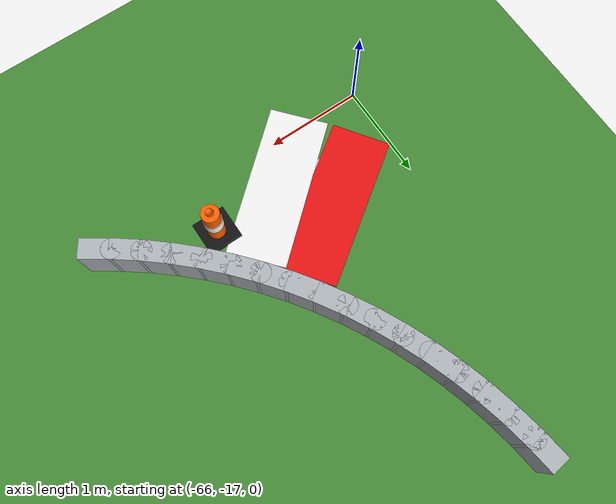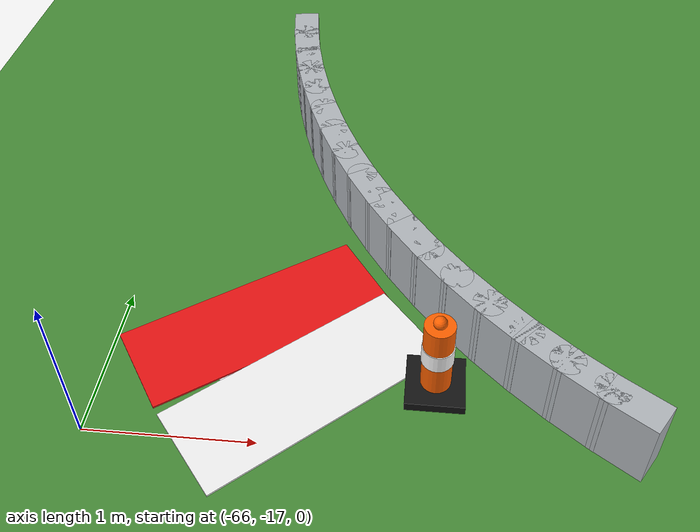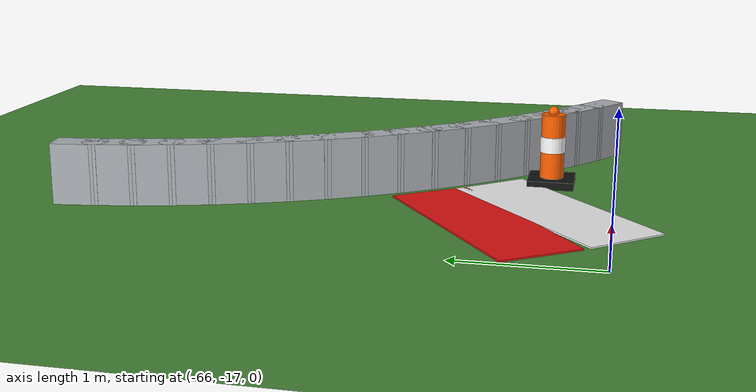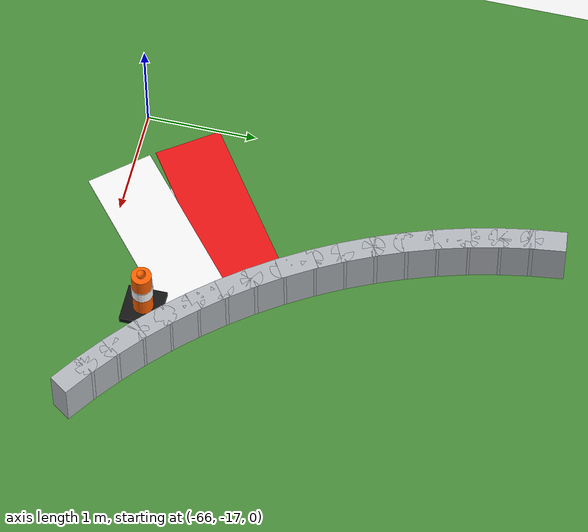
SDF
<sdf version="1.6">
 <world name="sem_silesia_ring_2026">
  <model name="ground_plane">
   <static>true</static>
   <link name="link">
    <collision name="collision">
     <geometry><plane><normal>0 0 1</normal><size>600 600</size></plane></geometry>
     <surface><friction><ode><mu>0.6</mu><mu2>0.6</mu2></ode></friction></surface>
    </collision>
    <visual name="visual">
     <geometry><plane><normal>0 0 1</normal><size>600 600</size></plane></geometry>
     <material><ambient>0.28 0.55 0.22 1</ambient><diffuse>0.28 0.55 0.22 1</diffuse></material>
    </visual>
   </link>
  </model>
  <model name="wl_Li_s42">
   <static>true</static>
   <pose>-65.2361 -16.5178 0.0050 0 0 5.3669</pose>
   <link name="link">
    <visual name="v">
     <geometry><box><size>0.4008 0.2000 0.0040</size></box></geometry>
     <material><ambient>1 1 1 1</ambient><diffuse>1 1 1 1</diffuse></material>
    </visual>
    <collision name="c">
     <geometry><box><size>0.4008 0.2000 0.0040</size></box></geometry>
     <surface><friction><ode><mu>0.9</mu><mu2>0.9</mu2></ode></friction></surface>
    </collision>
   </link>
  </model>
  <model name="wl_Li_jnt43">
   <static>true</static>
   <pose>-65.1292 -16.6535 0.0050 0 0 0</pose>
   <link name="link">
    <visual name="v">
     <geometry><cylinder><radius>0.1000</radius><length>0.0040</length></cylinder></geometry>
     <material><ambient>1 1 1 1</ambient><diffuse>1 1 1 1</diffuse></material>
    </visual>
    <collision name="c">
     <geometry><cylinder><radius>0.1000</radius><length>0.0040</length></cylinder></geometry>
     <surface><friction><ode><mu>0.9</mu><mu2>0.9</mu2></ode></friction></surface>
    </collision>
   </link>
  </model>
  <model name="wl_Li_s43">
   <static>true</static>
   <pose>-65.0187 -16.7864 0.0050 0 0 5.4192</pose>
   <link name="link">
    <visual name="v">
     <geometry><box><size>0.4008 0.2000 0.0040</size></box></geometry>
     <material><ambient>1 1 1 1</ambient><diffuse>1 1 1 1</diffuse></material>
    </visual>
    <collision name="c">
     <geometry><box><size>0.4008 0.2000 0.0040</size></box></geometry>
     <surface><friction><ode><mu>0.9</mu><mu2>0.9</mu2></ode></friction></surface>
    </collision>
   </link>
  </model>
  <model name="wl_Li_jnt44">
   <static>true</static>
   <pose>-64.9048 -16.9163 0.0050 0 0 0</pose>
   <link name="link">
    <visual name="v">
     <geometry><cylinder><radius>0.1000</radius><length>0.0040</length></cylinder></geometry>
     <material><ambient>1 1 1 1</ambient><diffuse>1 1 1 1</diffuse></material>
    </visual>
    <collision name="c">
     <geometry><cylinder><radius>0.1000</radius><length>0.0040</length></cylinder></geometry>
     <surface><friction><ode><mu>0.9</mu><mu2>0.9</mu2></ode></friction></surface>
    </collision>
   </link>
  </model>
  <model name="kL_in_k16">
   <static>true</static>
   <pose>-65.1543 -16.1225 0.0120 0 0 5.3250</pose>
   <link name="link">
    <visual name="v">
     <geometry><box><size>0.6135 1.6000 0.0120</size></box></geometry>
     <material><ambient>0.92 0.08 0.08 1</ambient><diffuse>0.92 0.08 0.08 1</diffuse></material>
    </visual>
    <collision name="c">
     <geometry><box><size>0.6135 1.6000 0.0120</size></box></geometry>
     <surface><friction><ode><mu>0.9</mu><mu2>0.9</mu2></ode></friction></surface>
    </collision>
   </link>
  </model>
  <model name="kL_in_k17">
   <static>true</static>
   <pose>-64.7906 -16.5915 0.0120 0 0 5.4192</pose>
   <link name="link">
    <visual name="v">
     <geometry><box><size>0.6135 1.6000 0.0120</size></box></geometry>
     <material><ambient>0.96 0.96 0.96 1</ambient><diffuse>0.96 0.96 0.96 1</diffuse></material>
    </visual>
    <collision name="c">
     <geometry><box><size>0.6135 1.6000 0.0120</size></box></geometry>
     <surface><friction><ode><mu>0.9</mu><mu2>0.9</mu2></ode></friction></surface>
    </collision>
   </link>
  </model>
  <model name="arm_Li_s32">
   <static>true</static>
   <pose>-65.2547 -13.1918 0.2250 0 0 4.8433</pose>
   <link name="link">
    <visual name="v">
     <geometry><box><size>0.3327 0.2000 0.4500</size></box></geometry>
     <material><ambient>0.70 0.72 0.74 1</ambient><diffuse>0.70 0.72 0.74 1</diffuse></material>
    </visual>
    <collision name="c">
     <geometry><box><size>0.3327 0.2000 0.4500</size></box></geometry>
     <surface><friction><ode><mu>0.9</mu><mu2>0.9</mu2></ode></friction></surface>
    </collision>
   </link>
  </model>
  <model name="arm_Li_jnt33">
   <static>true</static>
   <pose>-65.2347 -13.3291 0.2250 0 0 0</pose>
   <link name="link">
    <visual name="v">
     <geometry><cylinder><radius>0.1000</radius><length>0.4500</length></cylinder></geometry>
     <material><ambient>0.70 0.72 0.74 1</ambient><diffuse>0.70 0.72 0.74 1</diffuse></material>
    </visual>
    <collision name="c">
     <geometry><cylinder><radius>0.1000</radius><length>0.4500</length></cylinder></geometry>
     <surface><friction><ode><mu>0.9</mu><mu2>0.9</mu2></ode></friction></surface>
    </collision>
   </link>
  </model>
  <model name="arm_Li_s33">
   <static>true</static>
   <pose>-65.2113 -13.4658 0.2250 0 0 4.8956</pose>
   <link name="link">
    <visual name="v">
     <geometry><box><size>0.3327 0.2000 0.4500</size></box></geometry>
     <material><ambient>0.70 0.72 0.74 1</ambient><diffuse>0.70 0.72 0.74 1</diffuse></material>
    </visual>
    <collision name="c">
     <geometry><box><size>0.3327 0.2000 0.4500</size></box></geometry>
     <surface><friction><ode><mu>0.9</mu><mu2>0.9</mu2></ode></friction></surface>
    </collision>
   </link>
  </model>
  <model name="arm_Li_jnt34">
   <static>true</static>
   <pose>-65.1842 -13.6019 0.2250 0 0 0</pose>
   <link name="link">
    <visual name="v">
     <geometry><cylinder><radius>0.1000</radius><length>0.4500</length></cylinder></geometry>
     <material><ambient>0.70 0.72 0.74 1</ambient><diffuse>0.70 0.72 0.74 1</diffuse></material>
    </visual>
    <collision name="c">
     <geometry><cylinder><radius>0.1000</radius><length>0.4500</length></cylinder></geometry>
     <surface><friction><ode><mu>0.9</mu><mu2>0.9</mu2></ode></friction></surface>
    </collision>
   </link>
  </model>
  <model name="arm_Li_s34">
   <static>true</static>
   <pose>-65.1536 -13.7373 0.2250 0 0 4.9480</pose>
   <link name="link">
    <visual name="v">
     <geometry><box><size>0.3327 0.2000 0.4500</size></box></geometry>
     <material><ambient>0.70 0.72 0.74 1</ambient><diffuse>0.70 0.72 0.74 1</diffuse></material>
    </visual>
    <collision name="c">
     <geometry><box><size>0.3327 0.2000 0.4500</size></box></geometry>
     <surface><friction><ode><mu>0.9</mu><mu2>0.9</mu2></ode></friction></surface>
    </collision>
   </link>
  </model>
  <model name="arm_Li_jnt35">
   <static>true</static>
   <pose>-65.1194 -13.8717 0.2250 0 0 0</pose>
   <link name="link">
    <visual name="v">
     <geometry><cylinder><radius>0.1000</radius><length>0.4500</length></cylinder></geometry>
     <material><ambient>0.70 0.72 0.74 1</ambient><diffuse>0.70 0.72 0.74 1</diffuse></material>
    </visual>
    <collision name="c">
     <geometry><cylinder><radius>0.1000</radius><length>0.4500</length></cylinder></geometry>
     <surface><friction><ode><mu>0.9</mu><mu2>0.9</mu2></ode></friction></surface>
    </collision>
   </link>
  </model>
  <model name="arm_Li_s35">
   <static>true</static>
   <pose>-65.0817 -14.0053 0.2250 0 0 5.0004</pose>
   <link name="link">
    <visual name="v">
     <geometry><box><size>0.3327 0.2000 0.4500</size></box></geometry>
     <material><ambient>0.70 0.72 0.74 1</ambient><diffuse>0.70 0.72 0.74 1</diffuse></material>
    </visual>
    <collision name="c">
     <geometry><box><size>0.3327 0.2000 0.4500</size></box></geometry>
     <surface><friction><ode><mu>0.9</mu><mu2>0.9</mu2></ode></friction></surface>
    </collision>
   </link>
  </model>
  <model name="arm_Li_jnt36">
   <static>true</static>
   <pose>-65.0406 -14.1378 0.2250 0 0 0</pose>
   <link name="link">
    <visual name="v">
     <geometry><cylinder><radius>0.1000</radius><length>0.4500</length></cylinder></geometry>
     <material><ambient>0.70 0.72 0.74 1</ambient><diffuse>0.70 0.72 0.74 1</diffuse></material>
    </visual>
    <collision name="c">
     <geometry><cylinder><radius>0.1000</radius><length>0.4500</length></cylinder></geometry>
     <surface><friction><ode><mu>0.9</mu><mu2>0.9</mu2></ode></friction></surface>
    </collision>
   </link>
  </model>
  <model name="arm_Li_s36">
   <static>true</static>
   <pose>-64.9960 -14.2692 0.2250 0 0 5.0527</pose>
   <link name="link">
    <visual name="v">
     <geometry><box><size>0.3327 0.2000 0.4500</size></box></geometry>
     <material><ambient>0.70 0.72 0.74 1</ambient><diffuse>0.70 0.72 0.74 1</diffuse></material>
    </visual>
    <collision name="c">
     <geometry><box><size>0.3327 0.2000 0.4500</size></box></geometry>
     <surface><friction><ode><mu>0.9</mu><mu2>0.9</mu2></ode></friction></surface>
    </collision>
   </link>
  </model>
  <model name="arm_Li_jnt37">
   <static>true</static>
   <pose>-64.9480 -14.3994 0.2250 0 0 0</pose>
   <link name="link">
    <visual name="v">
     <geometry><cylinder><radius>0.1000</radius><length>0.4500</length></cylinder></geometry>
     <material><ambient>0.70 0.72 0.74 1</ambient><diffuse>0.70 0.72 0.74 1</diffuse></material>
    </visual>
    <collision name="c">
     <geometry><cylinder><radius>0.1000</radius><length>0.4500</length></cylinder></geometry>
     <surface><friction><ode><mu>0.9</mu><mu2>0.9</mu2></ode></friction></surface>
    </collision>
   </link>
  </model>
  <model name="arm_Li_s37">
   <static>true</static>
   <pose>-64.8966 -14.5282 0.2250 0 0 5.1051</pose>
   <link name="link">
    <visual name="v">
     <geometry><box><size>0.3327 0.2000 0.4500</size></box></geometry>
     <material><ambient>0.70 0.72 0.74 1</ambient><diffuse>0.70 0.72 0.74 1</diffuse></material>
    </visual>
    <collision name="c">
     <geometry><box><size>0.3327 0.2000 0.4500</size></box></geometry>
     <surface><friction><ode><mu>0.9</mu><mu2>0.9</mu2></ode></friction></surface>
    </collision>
   </link>
  </model>
  <model name="arm_Li_jnt38">
   <static>true</static>
   <pose>-64.8418 -14.6557 0.2250 0 0 0</pose>
   <link name="link">
    <visual name="v">
     <geometry><cylinder><radius>0.1000</radius><length>0.4500</length></cylinder></geometry>
     <material><ambient>0.70 0.72 0.74 1</ambient><diffuse>0.70 0.72 0.74 1</diffuse></material>
    </visual>
    <collision name="c">
     <geometry><cylinder><radius>0.1000</radius><length>0.4500</length></cylinder></geometry>
     <surface><friction><ode><mu>0.9</mu><mu2>0.9</mu2></ode></friction></surface>
    </collision>
   </link>
  </model>
  <model name="arm_Li_s38">
   <static>true</static>
   <pose>-64.7837 -14.7817 0.2250 0 0 5.1574</pose>
   <link name="link">
    <visual name="v">
     <geometry><box><size>0.3327 0.2000 0.4500</size></box></geometry>
     <material><ambient>0.70 0.72 0.74 1</ambient><diffuse>0.70 0.72 0.74 1</diffuse></material>
    </visual>
    <collision name="c">
     <geometry><box><size>0.3327 0.2000 0.4500</size></box></geometry>
     <surface><friction><ode><mu>0.9</mu><mu2>0.9</mu2></ode></friction></surface>
    </collision>
   </link>
  </model>
  <model name="arm_Li_jnt39">
   <static>true</static>
   <pose>-64.7223 -14.9061 0.2250 0 0 0</pose>
   <link name="link">
    <visual name="v">
     <geometry><cylinder><radius>0.1000</radius><length>0.4500</length></cylinder></geometry>
     <material><ambient>0.70 0.72 0.74 1</ambient><diffuse>0.70 0.72 0.74 1</diffuse></material>
    </visual>
    <collision name="c">
     <geometry><cylinder><radius>0.1000</radius><length>0.4500</length></cylinder></geometry>
     <surface><friction><ode><mu>0.9</mu><mu2>0.9</mu2></ode></friction></surface>
    </collision>
   </link>
  </model>
  <model name="arm_Li_s39">
   <static>true</static>
   <pose>-64.6577 -15.0289 0.2250 0 0 5.2098</pose>
   <link name="link">
    <visual name="v">
     <geometry><box><size>0.3327 0.2000 0.4500</size></box></geometry>
     <material><ambient>0.70 0.72 0.74 1</ambient><diffuse>0.70 0.72 0.74 1</diffuse></material>
    </visual>
    <collision name="c">
     <geometry><box><size>0.3327 0.2000 0.4500</size></box></geometry>
     <surface><friction><ode><mu>0.9</mu><mu2>0.9</mu2></ode></friction></surface>
    </collision>
   </link>
  </model>
  <model name="arm_Li_jnt40">
   <static>true</static>
   <pose>-64.5899 -15.1500 0.2250 0 0 0</pose>
   <link name="link">
    <visual name="v">
     <geometry><cylinder><radius>0.1000</radius><length>0.4500</length></cylinder></geometry>
     <material><ambient>0.70 0.72 0.74 1</ambient><diffuse>0.70 0.72 0.74 1</diffuse></material>
    </visual>
    <collision name="c">
     <geometry><cylinder><radius>0.1000</radius><length>0.4500</length></cylinder></geometry>
     <surface><friction><ode><mu>0.9</mu><mu2>0.9</mu2></ode></friction></surface>
    </collision>
   </link>
  </model>
  <model name="arm_Li_s40">
   <static>true</static>
   <pose>-64.5190 -15.2692 0.2250 0 0 5.2622</pose>
   <link name="link">
    <visual name="v">
     <geometry><box><size>0.3327 0.2000 0.4500</size></box></geometry>
     <material><ambient>0.70 0.72 0.74 1</ambient><diffuse>0.70 0.72 0.74 1</diffuse></material>
    </visual>
    <collision name="c">
     <geometry><box><size>0.3327 0.2000 0.4500</size></box></geometry>
     <surface><friction><ode><mu>0.9</mu><mu2>0.9</mu2></ode></friction></surface>
    </collision>
   </link>
  </model>
  <model name="arm_Li_jnt41">
   <static>true</static>
   <pose>-64.4450 -15.3866 0.2250 0 0 0</pose>
   <link name="link">
    <visual name="v">
     <geometry><cylinder><radius>0.1000</radius><length>0.4500</length></cylinder></geometry>
     <material><ambient>0.70 0.72 0.74 1</ambient><diffuse>0.70 0.72 0.74 1</diffuse></material>
    </visual>
    <collision name="c">
     <geometry><cylinder><radius>0.1000</radius><length>0.4500</length></cylinder></geometry>
     <surface><friction><ode><mu>0.9</mu><mu2>0.9</mu2></ode></friction></surface>
    </collision>
   </link>
  </model>
  <model name="arm_Li_s41">
   <static>true</static>
   <pose>-64.3679 -15.5020 0.2250 0 0 5.3145</pose>
   <link name="link">
    <visual name="v">
     <geometry><box><size>0.3327 0.2000 0.4500</size></box></geometry>
     <material><ambient>0.70 0.72 0.74 1</ambient><diffuse>0.70 0.72 0.74 1</diffuse></material>
    </visual>
    <collision name="c">
     <geometry><box><size>0.3327 0.2000 0.4500</size></box></geometry>
     <surface><friction><ode><mu>0.9</mu><mu2>0.9</mu2></ode></friction></surface>
    </collision>
   </link>
  </model>
  <model name="arm_Li_jnt42">
   <static>true</static>
   <pose>-64.2878 -15.6153 0.2250 0 0 0</pose>
   <link name="link">
    <visual name="v">
     <geometry><cylinder><radius>0.1000</radius><length>0.4500</length></cylinder></geometry>
     <material><ambient>0.70 0.72 0.74 1</ambient><diffuse>0.70 0.72 0.74 1</diffuse></material>
    </visual>
    <collision name="c">
     <geometry><cylinder><radius>0.1000</radius><length>0.4500</length></cylinder></geometry>
     <surface><friction><ode><mu>0.9</mu><mu2>0.9</mu2></ode></friction></surface>
    </collision>
   </link>
  </model>
  <model name="arm_Li_s42">
   <static>true</static>
   <pose>-64.2048 -15.7264 0.2250 0 0 5.3669</pose>
   <link name="link">
    <visual name="v">
     <geometry><box><size>0.3327 0.2000 0.4500</size></box></geometry>
     <material><ambient>0.70 0.72 0.74 1</ambient><diffuse>0.70 0.72 0.74 1</diffuse></material>
    </visual>
    <collision name="c">
     <geometry><box><size>0.3327 0.2000 0.4500</size></box></geometry>
     <surface><friction><ode><mu>0.9</mu><mu2>0.9</mu2></ode></friction></surface>
    </collision>
   </link>
  </model>
  <model name="arm_Li_jnt43">
   <static>true</static>
   <pose>-64.1189 -15.8354 0.2250 0 0 0</pose>
   <link name="link">
    <visual name="v">
     <geometry><cylinder><radius>0.1000</radius><length>0.4500</length></cylinder></geometry>
     <material><ambient>0.70 0.72 0.74 1</ambient><diffuse>0.70 0.72 0.74 1</diffuse></material>
    </visual>
    <collision name="c">
     <geometry><cylinder><radius>0.1000</radius><length>0.4500</length></cylinder></geometry>
     <surface><friction><ode><mu>0.9</mu><mu2>0.9</mu2></ode></friction></surface>
    </collision>
   </link>
  </model>
  <model name="arm_Li_s43">
   <static>true</static>
   <pose>-64.0302 -15.9421 0.2250 0 0 5.4192</pose>
   <link name="link">
    <visual name="v">
     <geometry><box><size>0.3327 0.2000 0.4500</size></box></geometry>
     <material><ambient>0.70 0.72 0.74 1</ambient><diffuse>0.70 0.72 0.74 1</diffuse></material>
    </visual>
    <collision name="c">
     <geometry><box><size>0.3327 0.2000 0.4500</size></box></geometry>
     <surface><friction><ode><mu>0.9</mu><mu2>0.9</mu2></ode></friction></surface>
    </collision>
   </link>
  </model>
  <model name="arm_Li_jnt44">
   <static>true</static>
   <pose>-63.9387 -16.0464 0.2250 0 0 0</pose>
   <link name="link">
    <visual name="v">
     <geometry><cylinder><radius>0.1000</radius><length>0.4500</length></cylinder></geometry>
     <material><ambient>0.70 0.72 0.74 1</ambient><diffuse>0.70 0.72 0.74 1</diffuse></material>
    </visual>
    <collision name="c">
     <geometry><cylinder><radius>0.1000</radius><length>0.4500</length></cylinder></geometry>
     <surface><friction><ode><mu>0.9</mu><mu2>0.9</mu2></ode></friction></surface>
    </collision>
   </link>
  </model>
  <model name="arm_Li_s44">
   <static>true</static>
   <pose>-63.8445 -16.1483 0.2250 0 0 5.4716</pose>
   <link name="link">
    <visual name="v">
     <geometry><box><size>0.3327 0.2000 0.4500</size></box></geometry>
     <material><ambient>0.70 0.72 0.74 1</ambient><diffuse>0.70 0.72 0.74 1</diffuse></material>
    </visual>
    <collision name="c">
     <geometry><box><size>0.3327 0.2000 0.4500</size></box></geometry>
     <surface><friction><ode><mu>0.9</mu><mu2>0.9</mu2></ode></friction></surface>
    </collision>
   </link>
  </model>
  <model name="arm_Li_jnt45">
   <static>true</static>
   <pose>-63.7477 -16.2477 0.2250 0 0 0</pose>
   <link name="link">
    <visual name="v">
     <geometry><cylinder><radius>0.1000</radius><length>0.4500</length></cylinder></geometry>
     <material><ambient>0.70 0.72 0.74 1</ambient><diffuse>0.70 0.72 0.74 1</diffuse></material>
    </visual>
    <collision name="c">
     <geometry><cylinder><radius>0.1000</radius><length>0.4500</length></cylinder></geometry>
     <surface><friction><ode><mu>0.9</mu><mu2>0.9</mu2></ode></friction></surface>
    </collision>
   </link>
  </model>
  <model name="arm_Li_s45">
   <static>true</static>
   <pose>-63.6483 -16.3445 0.2250 0 0 5.5240</pose>
   <link name="link">
    <visual name="v">
     <geometry><box><size>0.3327 0.2000 0.4500</size></box></geometry>
     <material><ambient>0.70 0.72 0.74 1</ambient><diffuse>0.70 0.72 0.74 1</diffuse></material>
    </visual>
    <collision name="c">
     <geometry><box><size>0.3327 0.2000 0.4500</size></box></geometry>
     <surface><friction><ode><mu>0.9</mu><mu2>0.9</mu2></ode></friction></surface>
    </collision>
   </link>
  </model>
  <model name="arm_Li_jnt46">
   <static>true</static>
   <pose>-63.5464 -16.4387 0.2250 0 0 0</pose>
   <link name="link">
    <visual name="v">
     <geometry><cylinder><radius>0.1000</radius><length>0.4500</length></cylinder></geometry>
     <material><ambient>0.70 0.72 0.74 1</ambient><diffuse>0.70 0.72 0.74 1</diffuse></material>
    </visual>
    <collision name="c">
     <geometry><cylinder><radius>0.1000</radius><length>0.4500</length></cylinder></geometry>
     <surface><friction><ode><mu>0.9</mu><mu2>0.9</mu2></ode></friction></surface>
    </collision>
   </link>
  </model>
  <model name="arm_Li_s46">
   <static>true</static>
   <pose>-63.4421 -16.5302 0.2250 0 0 5.5763</pose>
   <link name="link">
    <visual name="v">
     <geometry><box><size>0.3327 0.2000 0.4500</size></box></geometry>
     <material><ambient>0.70 0.72 0.74 1</ambient><diffuse>0.70 0.72 0.74 1</diffuse></material>
    </visual>
    <collision name="c">
     <geometry><box><size>0.3327 0.2000 0.4500</size></box></geometry>
     <surface><friction><ode><mu>0.9</mu><mu2>0.9</mu2></ode></friction></surface>
    </collision>
   </link>
  </model>
  <model name="arm_Li_jnt47">
   <static>true</static>
   <pose>-63.3354 -16.6189 0.2250 0 0 0</pose>
   <link name="link">
    <visual name="v">
     <geometry><cylinder><radius>0.1000</radius><length>0.4500</length></cylinder></geometry>
     <material><ambient>0.70 0.72 0.74 1</ambient><diffuse>0.70 0.72 0.74 1</diffuse></material>
    </visual>
    <collision name="c">
     <geometry><cylinder><radius>0.1000</radius><length>0.4500</length></cylinder></geometry>
     <surface><friction><ode><mu>0.9</mu><mu2>0.9</mu2></ode></friction></surface>
    </collision>
   </link>
  </model>
  <model name="arm_Li_s47">
   <static>true</static>
   <pose>-63.2264 -16.7048 0.2250 0 0 5.6287</pose>
   <link name="link">
    <visual name="v">
     <geometry><box><size>0.3327 0.2000 0.4500</size></box></geometry>
     <material><ambient>0.70 0.72 0.74 1</ambient><diffuse>0.70 0.72 0.74 1</diffuse></material>
    </visual>
    <collision name="c">
     <geometry><box><size>0.3327 0.2000 0.4500</size></box></geometry>
     <surface><friction><ode><mu>0.9</mu><mu2>0.9</mu2></ode></friction></surface>
    </collision>
   </link>
  </model>
  <model name="arm_Li_jnt48">
   <static>true</static>
   <pose>-63.1153 -16.7878 0.2250 0 0 0</pose>
   <link name="link">
    <visual name="v">
     <geometry><cylinder><radius>0.1000</radius><length>0.4500</length></cylinder></geometry>
     <material><ambient>0.70 0.72 0.74 1</ambient><diffuse>0.70 0.72 0.74 1</diffuse></material>
    </visual>
    <collision name="c">
     <geometry><cylinder><radius>0.1000</radius><length>0.4500</length></cylinder></geometry>
     <surface><friction><ode><mu>0.9</mu><mu2>0.9</mu2></ode></friction></surface>
    </collision>
   </link>
  </model>
  <model name="arm_Li_s48">
   <static>true</static>
   <pose>-63.0020 -16.8679 0.2250 0 0 5.6810</pose>
   <link name="link">
    <visual name="v">
     <geometry><box><size>0.3327 0.2000 0.4500</size></box></geometry>
     <material><ambient>0.70 0.72 0.74 1</ambient><diffuse>0.70 0.72 0.74 1</diffuse></material>
    </visual>
    <collision name="c">
     <geometry><box><size>0.3327 0.2000 0.4500</size></box></geometry>
     <surface><friction><ode><mu>0.9</mu><mu2>0.9</mu2></ode></friction></surface>
    </collision>
   </link>
  </model>
  <model name="cn_Li_6">
   <static>true</static>
   <pose>-64.0305 -16.5305 0 0 0 0</pose>
   <link name="link">
    <visual name="base">
     <pose>0 0 0.03 0 0 0</pose>
     <geometry><box><size>0.35 0.35 0.06</size></box></geometry>
     <material><ambient>0.08 0.08 0.08 1</ambient><diffuse>0.08 0.08 0.08 1</diffuse></material>
    </visual>
    <visual name="body">
     <pose>0 0 0.30 0 0 0</pose>
     <geometry><cylinder><radius>0.09</radius><length>0.50</length></cylinder></geometry>
     <material><ambient>1.0 0.38 0.0 1</ambient><diffuse>1.0 0.38 0.0 1</diffuse></material>
    </visual>
    <visual name="stripe">
     <pose>0 0 0.32 0 0 0</pose>
     <geometry><cylinder><radius>0.095</radius><length>0.12</length></cylinder></geometry>
     <material><ambient>1 1 1 1</ambient><diffuse>1 1 1 1</diffuse></material>
    </visual>
    <visual name="tip">
     <pose>0 0 0.57 0 0 0</pose>
     <geometry><sphere><radius>0.04</radius></sphere></geometry>
     <material><ambient>1.0 0.38 0.0 1</ambient><diffuse>1.0 0.38 0.0 1</diffuse></material>
    </visual>
    <collision name="c">
     <pose>0 0 0.28 0 0 0</pose>
     <geometry><cylinder><radius>0.09</radius><length>0.56</length></cylinder></geometry>
    </collision>
   </link>
  </model>
 </world>
</sdf>
